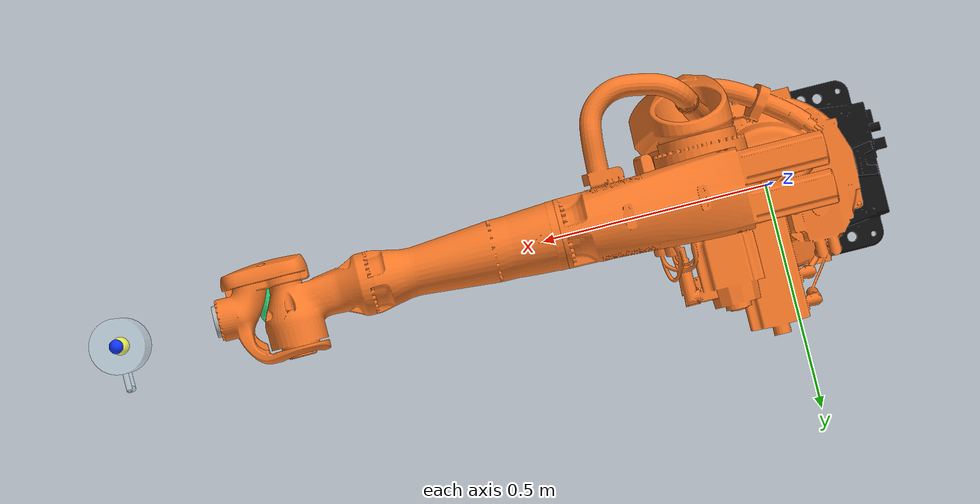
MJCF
<mujoco model="kuka_kr20_cup_transport">

    <compiler angle="radian" boundmass="0.001" boundinertia="0.001" meshdir="." />

    <option integrator="implicitfast" timestep="0.001" solver="Newton" iterations="100" />

    <visual>
        <global offwidth="1280" offheight="960" />
        <quality shadowsize="4096" offsamples="8" />
        <map fogstart="3" fogend="7" znear="0.01" zfar="10" />
        <rgba haze="0.86 0.90 0.96 1" />
    </visual>

    <asset>
        <texture name="sky" type="skybox" builtin="gradient" rgb1="0.92 0.96 1.0"
            rgb2="0.42 0.56 0.78" width="512" height="512" />
        <texture name="floor_grid" type="2d" builtin="checker" rgb1="0.82 0.85 0.88"
            rgb2="0.62 0.66 0.70" width="1024" height="1024" />
        <material name="floor_mat" texture="floor_grid" texrepeat="8 8" reflectance="0.22"
            rgba="1 1 1 1" />
        <material name="kuka_black"
            rgba="0.054901960784313725 0.054901960784313725 0.06274509803921569 1" />
        <material name="kuka_orange"
            rgba="0.9647058823529412 0.47058823529411764 0.1568627450980392 1" />
        <material name="silver" rgba="0.70 0.70 0.70 1" />
        <material name="glass" rgba="0.78 0.92 1.00 0.30" reflectance="0.35" />
        <material name="water" rgba="0.06 0.52 0.95 0.56" reflectance="0.18" />
        <material name="target" rgba="0.08 0.95 0.45 0.80" emission="0.25" />
        <material name="safety_axis" rgba="0.05 0.20 1.00 1" emission="0.15" />

        <mesh name="base_link" file="assets/base_link.stl" scale="0.001 0.001 0.001" />
        <mesh name="link_1_1" file="assets/link_1_1.stl" scale="0.001 0.001 0.001" />
        <mesh name="link_2_1" file="assets/link_2_1.stl" scale="0.001 0.001 0.001" />
        <mesh name="link_3_1" file="assets/link_3_1.stl" scale="0.001 0.001 0.001" />
        <mesh name="link_4_1" file="assets/link_4_1.stl" scale="0.001 0.001 0.001" />
        <mesh name="link_5_1" file="assets/link_5_1.stl" scale="0.001 0.001 0.001" />
        <mesh name="link_6_1" file="assets/link_6_1.stl" scale="0.001 0.001 0.001" />
    </asset>

    <worldbody>
        <light name="key_light" pos="-1.8 -2.4 4.2" dir="0.45 0.55 -1" directional="true"
            diffuse="0.95 0.94 0.90" specular="0.30 0.30 0.30" />
        <light name="rim_light" pos="2.2 1.8 3.0" dir="-0.5 -0.3 -1" directional="true"
            diffuse="0.32 0.46 0.72" specular="0.18 0.18 0.22" />
        <camera name="paper_camera" pos="3.70 -3.50 3.00"
            xyaxes="0.764628 0.644472 0 -0.252585 0.299677 0.919997" fovy="46" />
        <geom name="floor" type="plane" pos="0 0 0" size="3.0 3.0 0.02" material="floor_mat"
            contype="1" conaffinity="1" />

        <body name="target_marker" mocap="true" pos="1.05 0.00 1.15">
            <geom name="target_marker_geom" type="sphere" size="0.045" material="target"
                contype="0" conaffinity="0" />
            <site name="target_site" type="sphere" size="0.018" rgba="0.02 1.00 0.38 1" />
        </body>

        <body name="base_link" pos="0 0 0">
            <inertial pos="-0.02519167908195973 -0.0003512237430115979 0.14073533087089485"
                mass="2.7534689254296694"
                diaginertia="4.167631 5.193899 5.744846" />
            <geom type="mesh" name="base_link_mesh" mesh="base_link" material="kuka_black"
                contype="0" conaffinity="0" group="1" />

            <body name="link_1_1" pos="0 0 0.274469">
                <inertial pos="0.04262669771195508 0.022539294966451077 0.16742328594359268"
                    mass="1.95025233840842"
                    diaginertia="3.903396 4.254089 4.101512" />
                <joint name="joint_1" axis="0 0 1" limited="true"
                    range="-3.2288591161895095 3.2288591161895095" armature="0.03"
                    damping="20" frictionloss="0.05" />
                <geom type="mesh" name="link_1_1_mesh" pos="0 0 -0.274469" mesh="link_1_1"
                    material="kuka_orange" contype="0" conaffinity="0" group="1" />

                <body name="link_2_1" pos="0.16 -0.0948 0.245531">
                    <inertial pos="-0.006708726638690016 -0.08230603603988629 0.35023181950025006"
                        mass=".8242519331073362"
                        diaginertia="4.984932 5.021308 0.256664" />
                    <joint name="joint_2" axis="0 -1 0" limited="true"
                        range="-3.2288591161895095 1.1344640137963142" armature="0.03"
                        damping="24" frictionloss="0.05" />
                    <geom type="mesh" name="link_2_1_mesh" pos="-0.16 0.0948 -0.52"
                        mesh="link_2_1" material="kuka_orange" contype="0" conaffinity="0"
                        group="1" />

                    <body name="link_3_1" pos="0 -0.0203 0.78">
                        <inertial pos="0.03856241201011176 0.11370205937926676 0.07616220977557053"
                            mass="1.1562183723958658"
                            diaginertia="1.475083 2.199261 2.25828" />
                        <joint name="joint_3" axis="0 1 0" limited="true"
                            range="-2.4085543677521746 3.0543261909900763" armature="0.03"
                            damping="22" frictionloss="0.05" />
                        <geom type="mesh" name="link_3_1_mesh" pos="-0.16 0.1151 -1.3"
                            mesh="link_3_1" material="kuka_orange" contype="0" conaffinity="0"
                            group="1" />

                        <body name="link_4_1" pos="0.3 0.1151 0.15">
                            <inertial
                                pos="0.2794641231700052 0.005705547665961539 -1.1441231588804612e-06"
                                mass=".47719118331815324"
                                diaginertia="0.089286 1.63285 1.644056" />
                            <joint name="joint_4" axis="1 0 0" limited="true"
                                range="-6.108652381980153 6.108652381980153" armature="0.015"
                                damping="8" frictionloss="0.02" />
                            <geom type="mesh" name="link_4_1_mesh" pos="-0.46 0 -1.45"
                                mesh="link_4_1" material="kuka_orange" contype="0"
                                conaffinity="0" group="1" />

                            <body name="link_5_1" pos="0.56 0.0923 0">
                                <inertial
                                    pos="0.05739426005238135 -0.10605062717888086 -4.807006906970557e-06"
                                    mass=".10353274319603718"
                                    diaginertia="0.043336 0.032453 0.064603" />
                                <joint name="joint_5" axis="0 1 0" limited="true"
                                    range="-2.2689280275926285 2.2689280275926285"
                                    armature="0.015" damping="8" frictionloss="0.02" />
                                <geom type="mesh" name="link_5_1_mesh" pos="-1.02 -0.0923 -1.45"
                                    mesh="link_5_1" material="kuka_orange" contype="0"
                                    conaffinity="0" group="1" />

                                <body name="link_6_1" pos="0.139 -0.0923 0">
                                    <inertial
                                        pos="0.008129076502710442 -2.0340839963698945e-14 8.253251104872739e-05"
                                        mass="0.0020169644458108382"
                                        diaginertia="0.000104 5.5e-05 5.4e-05" />
                                    <joint name="joint_6" axis="1 0 0" limited="true"
                                        range="-6.108652381980153 6.108652381980153"
                                        armature="0.01" damping="6" frictionloss="0.01" />
                                    <geom type="mesh" name="link_6_1_mesh" pos="-1.159 0 -1.45"
                                        mesh="link_6_1" material="silver" contype="0"
                                        conaffinity="0" group="1" />

                                    <site name="ee_site" pos="0.20 0 0.10" size="0.018"
                                        rgba="1.0 0.95 0.05 1" />
                                    <body name="cup_body" pos="0.20 0 0.10">
                                        <site name="cup_axis_base_site" pos="0 0 -0.10"
                                            size="0.010" rgba="0.05 0.20 1.00 1" />
                                        <site name="cup_axis_tip_site" pos="0 0 0.14"
                                            size="0.014" rgba="0.05 0.20 1.00 1" />
                                        <geom name="cup_glass" type="cylinder" size="0.055 0.12"
                                            material="glass" mass="0.05" contype="0"
                                            conaffinity="0" />
                                        <geom name="water_column" type="cylinder" pos="0 0 -0.025"
                                            size="0.049 0.075" material="water" mass="0.20"
                                            contype="0" conaffinity="0" />
                                        <geom name="water_surface" type="cylinder" pos="0 0 0.052"
                                            size="0.050 0.002" rgba="0.45 0.86 1.00 0.72"
                                            contype="0" conaffinity="0" />
                                        <geom name="cup_axis_visual" type="capsule"
                                            fromto="0 0 -0.10 0 0 0.14" size="0.004"
                                            material="safety_axis" contype="0" conaffinity="0" />
                                        <geom name="handle_upper" type="capsule"
                                            fromto="0 0.052 0.060 0 0.087 0.060" size="0.006"
                                            material="glass" contype="0" conaffinity="0" />
                                        <geom name="handle_outer" type="capsule"
                                            fromto="0 0.087 0.060 0 0.087 -0.055" size="0.006"
                                            material="glass" contype="0" conaffinity="0" />
                                        <geom name="handle_lower" type="capsule"
                                            fromto="0 0.087 -0.055 0 0.052 -0.055" size="0.006"
                                            material="glass" contype="0" conaffinity="0" />
                                    </body>
                                </body>
                            </body>
                        </body>
                    </body>
                </body>
            </body>
        </body>
    </worldbody>

    <actuator>
        <position name="joint_1_position" joint="joint_1" kp="1800" ctrllimited="true"
            ctrlrange="-3.2288591161895095 3.2288591161895095" />
        <position name="joint_2_position" joint="joint_2" kp="2600" ctrllimited="true"
            ctrlrange="-3.2288591161895095 1.1344640137963142" />
        <position name="joint_3_position" joint="joint_3" kp="2400" ctrllimited="true"
            ctrlrange="-2.4085543677521746 3.0543261909900763" />
        <position name="joint_4_position" joint="joint_4" kp="1200" ctrllimited="true"
            ctrlrange="-6.108652381980153 6.108652381980153" />
        <position name="joint_5_position" joint="joint_5" kp="1200" ctrllimited="true"
            ctrlrange="-2.2689280275926285 2.2689280275926285" />
        <position name="joint_6_position" joint="joint_6" kp="900" ctrllimited="true"
            ctrlrange="-6.108652381980153 6.108652381980153" />
    </actuator>

    <contact>
        <exclude body1="base_link" body2="link_1_1" />
        <exclude body1="link_1_1" body2="link_2_1" />
        <exclude body1="link_2_1" body2="link_3_1" />
        <exclude body1="link_3_1" body2="link_4_1" />
        <exclude body1="link_4_1" body2="link_5_1" />
        <exclude body1="link_5_1" body2="link_6_1" />
    </contact>

</mujoco>
